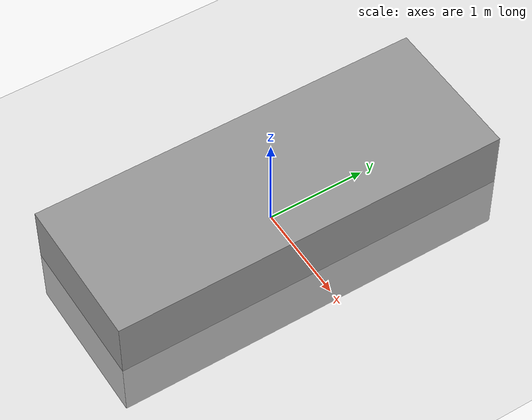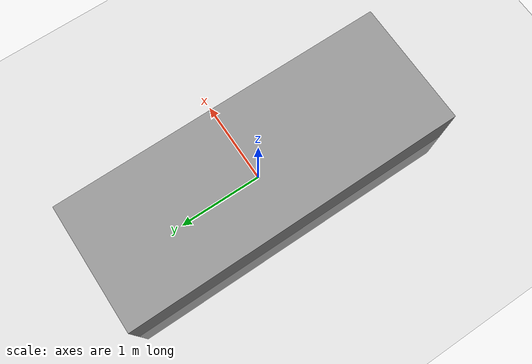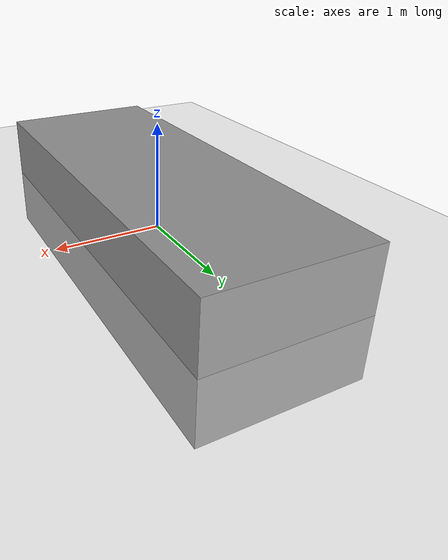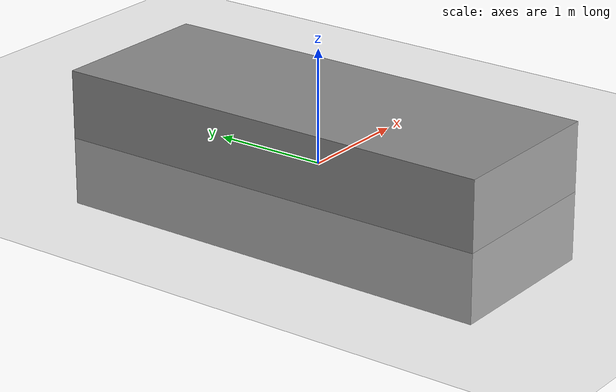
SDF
<sdf version='1.6'>
  <world name='roadA'>
    <include>
      <uri>model://sun</uri>
    </include>
    <plugin name='rndf_gazebo_plugin0' filename='librndf_gazebo_plugin0.so.0.0.1'>
      <rndf>roadA.rndf</rndf>
      <lanes>true</lanes>
      <waypoints>true</waypoints>
      <print_labels>true</print_labels>
      <junctions>true</junctions>
      <perimeter>true</perimeter>
      <waypoints_material>Gazebo/White</waypoints_material>
      <lane_material>Gazebo/Black</lane_material>
      <junction_material>Gazebo/Residential</junction_material>
      <interpolation_distance>10.0</interpolation_distance>
      <perimeter_material>Gazebo/Blue</perimeter_material>
    </plugin>
    <model name='ground_plane'>
      <static>1</static>
      <link name='link'>
        <collision name='collision'>
          <geometry>
            <plane>
              <normal>0 0 1</normal>
              <size>500 500</size>
            </plane>
          </geometry>
          <surface>
            <contact>
              <collide_bitmask>65535</collide_bitmask>
              <ode/>
            </contact>
            <friction>
              <ode>
                <mu>100</mu>
                <mu2>50</mu2>
              </ode>
              <torsional>
                <ode/>
              </torsional>
            </friction>
            <bounce/>
          </surface>
          <max_contacts>10</max_contacts>
        </collision>
        <visual name='visual'>
          <cast_shadows>0</cast_shadows>
          <geometry>
            <plane>
              <normal>0 0 1</normal>
              <size>500 500</size>
            </plane>
          </geometry>
          <material>
            <script>
              <uri>file://media/materials/scripts/gazebo.material</uri>
              <name>Gazebo/Grey</name>
            </script>
          </material>
        </visual>
        <self_collide>0</self_collide>
        <enable_wind>0</enable_wind>
        <kinematic>0</kinematic>
      </link>
    </model>

     <model name="simple_box">
        <link name="simple_box_link">
           <pose frame="">0.0 0.0 0.0 0 0 0</pose>
           <collision name="simple_box_collision">
              <geometry>
                 <box>
                    <size>1.5 4.0 1.2</size>
                 </box>
              </geometry>
              <surface>
                <friction>
                  <ode>
                    <mu>0.0</mu>
                    <mu2>0.0</mu2>
                  </ode>ode>
                </friction>
              </surface>
           </collision>
           <visual name="simple_box_visual">
              <material>
                 <script>
                    <uri>file://media/materials/scripts/gazebo.material</uri>
                    <name>Gazebo/Grey</name>
                 </script>
                 <ambient>1 1 1 1</ambient>
              </material>
              <meta>
                 <layer>0</layer>
              </meta>
              <geometry>
                 <box>
                    <size>1.5 4.0 1.2</size>
                 </box>
              </geometry>
           </visual>
           <inertial>
              <mass>1000</mass>
              <inertia>
                <ixx>1520.83</ixx>
                <ixy>0.0</ixy>
                <ixz>0.0</ixz>
                <iyy>307.5</iyy>
                <iyz>0.0</iyz>
                <izz>1453.33</izz>
              </inertia>
              <pose frame=''>0 0 0 0 -0 0</pose>
           </inertial>
        </link>
        <plugin name="sensor" filename="libroad_driver_plugin.so" >
          <initialWaitTime>5</initialWaitTime>
        </plugin>
     </model>

    <gravity>0 0 -9.8</gravity>
    <magnetic_field>6e-06 2.3e-05 -4.2e-05</magnetic_field>
    <atmosphere type='adiabatic'/>
    <physics name='default_physics' default='0' type='ode'>
      <max_step_size>0.001</max_step_size>
      <real_time_factor>1</real_time_factor>
      <real_time_update_rate>1000</real_time_update_rate>
    </physics>
    <scene>
      <ambient>0.4 0.4 0.4 1</ambient>
      <background>0.7 0.7 0.7 1</background>
      <shadows>1</shadows>
    </scene>
    <wind/>
    <spherical_coordinates>
      <surface_model>EARTH_WGS84</surface_model>
      <latitude_deg>0</latitude_deg>
      <longitude_deg>0</longitude_deg>
      <elevation>0</elevation>
      <heading_deg>0</heading_deg>
    </spherical_coordinates>
    <gui fullscreen='0'>
      <camera name='user_camera'>
        <pose frame=''>25.7442 -168.253 46.0654 0 0.398797 1.54</pose>
        <view_controller>orbit</view_controller>
        <projection_type>perspective</projection_type>
      </camera>
    </gui>
  </world>
</sdf>
